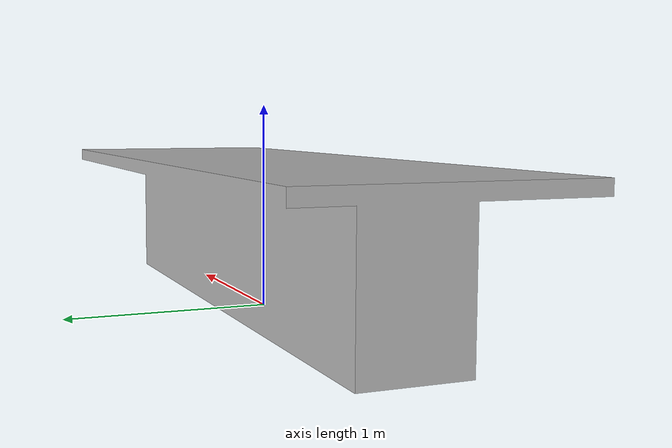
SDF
<?xml version="1.0" ?>
<sdf version="1.5">
  <model name="conference_table_medium">
    <static>true</static>
    <link name="link">
      <collision name="collision">
        <geometry>
          <mesh>
            <uri>model://conference_table_medium/meshes/conference_table_medium.obj</uri>
            <scale>0.01 0.01 0.01</scale>
          </mesh>
        </geometry>
      </collision>
      <visual name="visual">
        <geometry>
          <mesh>
            <uri>model://conference_table_medium/meshes/conference_table_medium.obj</uri>
            <scale>0.01 0.01 0.01</scale>
          </mesh>
        </geometry>
      </visual>
    </link>
  </model>
</sdf>
